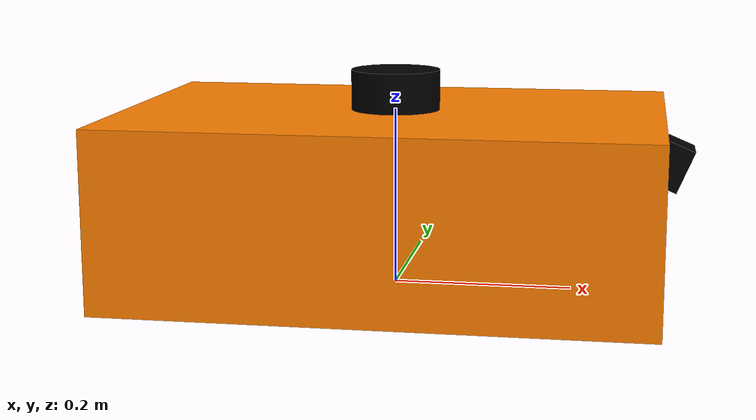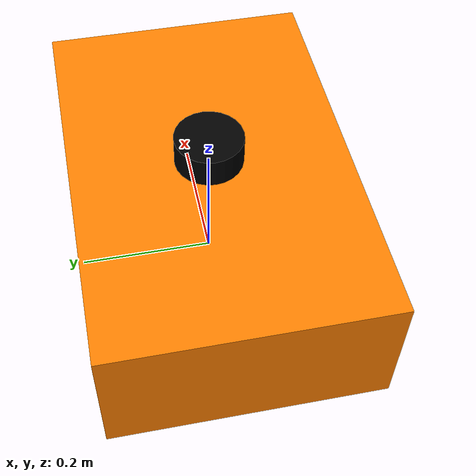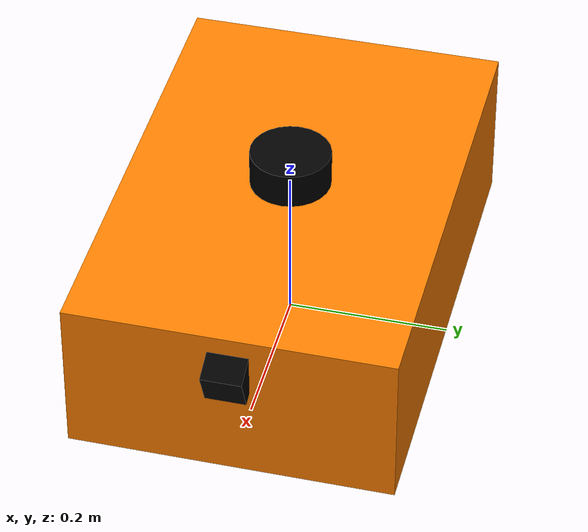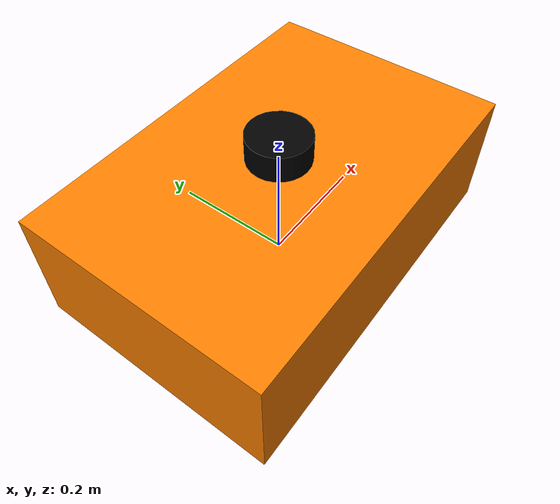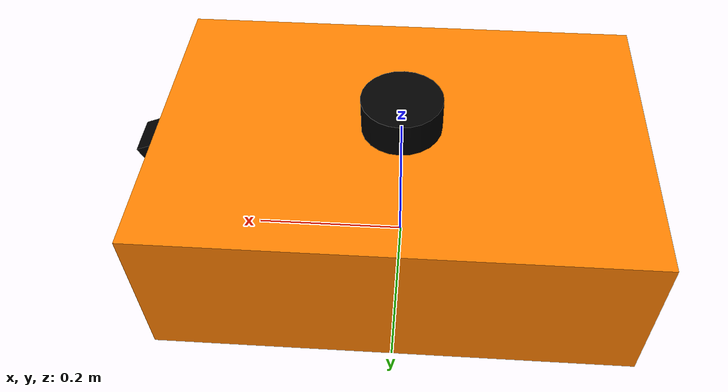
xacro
<?xml version="1.0"?>
<robot name="agribot" xmlns:xacro="http://www.ros.org/wiki/xacro">

  <!-- Materials -->
  <material name="orange"> <color rgba="1.0 0.5 0.0 1.0"/> </material>
  <material name="black"> <color rgba="0.0 0.0 0.0 1.0"/> </material>

  <!-- Base Link -->
  <link name="base_footprint"/>

  <joint name="base_joint" type="fixed">
    <parent link="base_footprint"/>
    <child link="base_link"/>
    <origin xyz="0 0 0.1" rpy="0 0 0"/>
  </joint>

  <link name="base_link">
    <visual>
      <geometry>
        <box size="0.6 0.4 0.2"/>
      </geometry>
      <material name="orange"/>
    </visual>
    <collision>
      <geometry>
        <box size="0.6 0.4 0.2"/>
      </geometry>
    </collision>
    <inertial>
      <mass value="10.0"/>
      <inertia ixx="0.1" ixy="0" ixz="0" iyy="0.1" iyz="0" izz="0.1"/>
    </inertial>
  </link>

  <!-- LiDAR Link -->
  <link name="lidar_link">
    <visual>
      <geometry>
        <cylinder length="0.05" radius="0.05"/>
      </geometry>
      <material name="black"/>
    </visual>
  </link>

  <joint name="lidar_joint" type="fixed">
    <parent link="base_link"/>
    <child link="lidar_link"/>
    <origin xyz="0 0 0.12" rpy="0 0 0"/>
  </joint>

  <!-- Camera Link -->
  <link name="camera_link">
    <visual>
      <geometry>
        <box size="0.05 0.05 0.05"/>
      </geometry>
      <material name="black"/>
    </visual>
  </link>

  <joint name="camera_joint" type="fixed">
    <parent link="base_link"/>
    <child link="camera_link"/>
    <origin xyz="0.3 0 0.05" rpy="0 0.4 0"/> <!-- Angled down -->
  </joint>

  <!-- Wheels (Simplified 4-wheel rover) -->
  <xacro:macro name="wheel" params="prefix x y">
    <link name="${prefix}_wheel">
      <visual>
        <geometry>
          <cylinder length="0.04" radius="0.025"/>
        </geometry>
        <material name="black"/>
      </visual>
      <collision>
        <geometry>
          <cylinder length="0.04" radius="0.025"/>
        </geometry>
      </collision>
    </link>

    <joint name="${prefix}_wheel_joint" type="continuous">
      <parent link="base_link"/>
      <child link="${prefix}_wheel"/>
      <origin xyz="${x} ${y} -0.075" rpy="${pi/2} 0 0"/>
      <axis xyz="0 0 1"/>
    </joint>
  </xacro:macro>

  <xacro:wheel prefix="front_left" x="0.2" y="0.11"/>
  <xacro:wheel prefix="front_right" x="0.2" y="-0.11"/>
  <xacro:wheel prefix="rear_left" x="-0.2" y="0.11"/>
  <xacro:wheel prefix="rear_right" x="-0.2" y="-0.11"/>

  <!-- Gazebo Plugins -->
  <gazebo>
    <plugin name="diff_drive" filename="libgazebo_ros_diff_drive.so">
      <ros>
        <namespace>/</namespace>
      </ros>
      <left_joint>front_left_wheel_joint</left_joint>
      <right_joint>front_right_wheel_joint</right_joint>
      <wheel_separation>0.22</wheel_separation>
      <wheel_diameter>0.05</wheel_diameter>
      <publish_odom>true</publish_odom>
      <publish_odom_tf>true</publish_odom_tf>
      <odometry_frame>odom</odometry_frame>
      <robot_base_frame>base_link</robot_base_frame>
    </plugin>
  </gazebo>

</robot>
